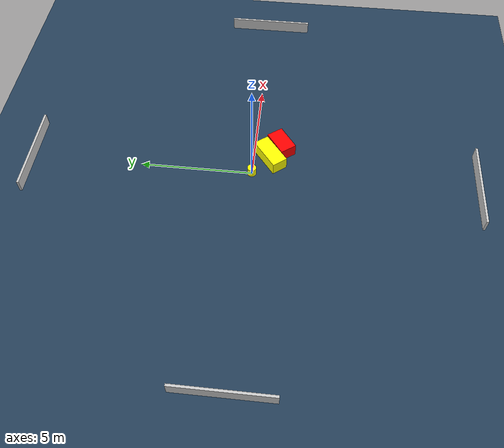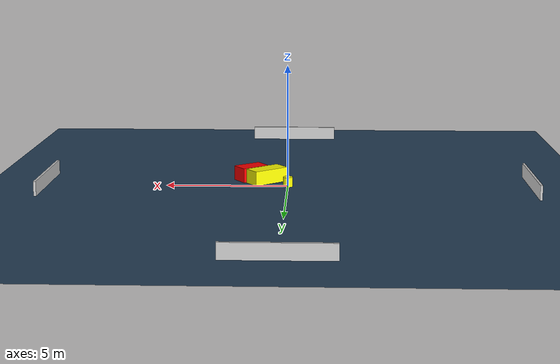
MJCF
<?xml version="1.0" ?>
<mujoco model="generated_environment">
  <option timestep="0.01" integrator="RK4" cone="elliptic"/>
  <default>
    <geom density="1"/>
  </default>
  <asset>
    <texture builtin="gradient" height="3072" name="skybox" rgb1="0.3 0.5 0.7" rgb2="0 0 0" type="skybox" width="512"/>
    <texture builtin="checker" height="300" name="groundplane" rgb1="0.2 0.3 0.4" rgb2="0.1 0.2 0.3" type="2d" width="300"/>
    <material name="groundplane" reflectance="0.2" texrepeat="5 5" texture="groundplane"/>
  </asset>
  <worldbody>
    <light dir="0 0 -1" directional="true" pos="0 0 1.5"/>
    <geom condim="3" friction="0.5 0.005 0.001" material="groundplane" name="floor" pos="0 0 0" size="0 0 0.05" type="plane"/>
    <body name="walls">
      <geom name="wall_1" condim="4" pos="-10.0 0.0 0.3" rgba="0.800000011920929 0.800000011920929 0.800000011920929 1.0" size="0.05 2.0 0.3" type="box"/>
      <geom name="wall_2" condim="4" pos="10.0 0.0 0.3" rgba="0.800000011920929 0.800000011920929 0.800000011920929 1.0" size="0.05 2.0 0.3" type="box"/>
      <geom name="wall_3" condim="4" pos="0.0 -10.0 0.3" rgba="0.800000011920929 0.800000011920929 0.800000011920929 1.0" size="2.0 0.05 0.3" type="box"/>
      <geom name="wall_4" condim="4" pos="0.0 10.0 0.3" rgba="0.800000011920929 0.800000011920929 0.800000011920929 1.0" size="2.0 0.05 0.3" type="box"/>
    </body>
    <body name="robot">
      <joint name="joint_x" type="slide" pos="0 0 0" axis="1 0 0"/>
      <joint name="joint_y" type="slide" pos="0 0 0" axis="0 1 0"/>
      <geom name="robot" type="cylinder" pos="0.0 0.0 0.2" size="0.2 0.2 0.0" mass="5.0" friction="1.0 0.005 0.0001" condim="4" rgba="1.0 1.0 0.0 1.0"/>
    </body>
    <body name="obstacle_1_movable">
      <geom name="obstacle_1_movable" condim="4" pos="0.9034825301129924 -0.7474372332008757 0.3" euler="0 0 218.10820498101234" friction="0.0 0.005 0.001" rgba="1.0 1.0 0.0 1.0" size="0.7834985412373954 0.35925383321714766 0.3" type="box" mass="0.1"/>
      <joint type="free"/>
    </body>
    <body name="obstacle_2_static">
      <geom name="obstacle_2_static" condim="4" pos="1.5786738396735296 -1.1990941826234216 0.3" euler="0 0 36.31687226976992" friction="0.0 0.005 0.001" rgba="1.0 0.0 0.0 1.0" size="0.6066722320976411 0.3813010821416768 0.3" type="box"/>
    </body>
  </worldbody>
  <actuator>
    <motor name="actuator_x" joint="joint_x" gear="1" ctrlrange="-1 1"/>
    <motor name="actuator_y" joint="joint_y" gear="1" ctrlrange="-1 1"/>
  </actuator>
</mujoco>
